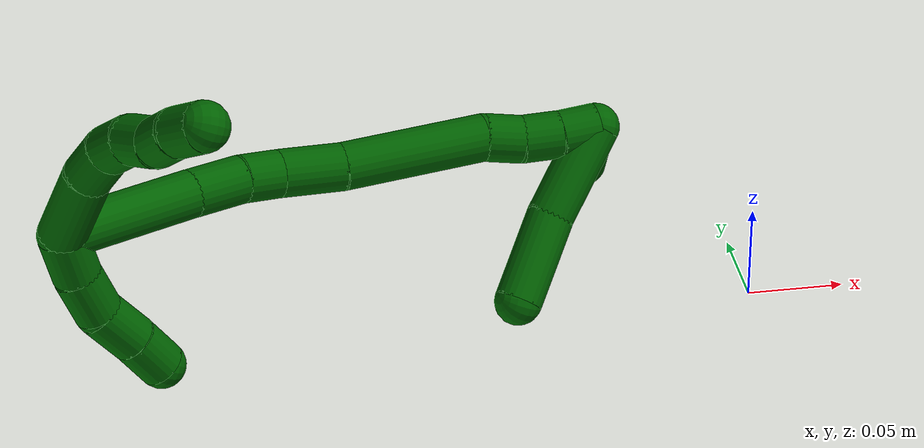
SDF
<sdf version="1.7">
 <world name="default">
  <model name="6">
   <static>0</static>
   <link name="6">
    <collision name="collision-cylinder-e_1_2_8">
     <pose>0.013442 -0.018084 0.005991 1.25086 0.614487 0.450482</pose>
     <geometry><cylinder><radius>0.0125</radius><length>0.046631</length></cylinder></geometry>
     <surface>
      <friction><ode><mu>1.16</mu><mu2>1.16</mu2><slip1>0</slip1><slip2>0</slip2></ode></friction>
      <contact><ode><kp>1e+06</kp><kd>1</kd><max_vel>0</max_vel><min_depth>0.001</min_depth></ode></contact>
     </surface>
    </collision>
    <visual name="visual-cylinder-e_1_2_8">
     <pose>0.013442 -0.018084 0.005991 1.25086 0.614487 0.450482</pose>
     <geometry><cylinder><radius>0.0125</radius><length>0.046631</length></cylinder></geometry>
     <material><ambient>0 0.392157 0.003922 1</ambient></material>
    </visual>
    <collision name="collision-cylinder-e_2_8_9">
     <pose>0.032763 -0.045689 0.013143 1.4495 0.549811 0.489495</pose>
     <geometry><cylinder><radius>0.0125</radius><length>0.022499</length></cylinder></geometry>
     <surface>
      <friction><ode><mu>1.16</mu><mu2>1.16</mu2><slip1>0</slip1><slip2>0</slip2></ode></friction>
      <contact><ode><kp>1e+06</kp><kd>1</kd><max_vel>0</max_vel><min_depth>0.001</min_depth></ode></contact>
     </surface>
    </collision>
    <visual name="visual-cylinder-e_2_8_9">
     <pose>0.032763 -0.045689 0.013143 1.4495 0.549811 0.489495</pose>
     <geometry><cylinder><radius>0.0125</radius><length>0.022499</length></cylinder></geometry>
     <material><ambient>0 0.392157 0.003922 1</ambient></material>
    </visual>
    <collision name="collision-cylinder-e_3_9_10">
     <pose>0.041139 -0.064939 0.014482 1.55253 0.251272 0.24677</pose>
     <geometry><cylinder><radius>0.0125</radius><length>0.020094</length></cylinder></geometry>
     <surface>
      <friction><ode><mu>1.16</mu><mu2>1.16</mu2><slip1>0</slip1><slip2>0</slip2></ode></friction>
      <contact><ode><kp>1e+06</kp><kd>1</kd><max_vel>0</max_vel><min_depth>0.001</min_depth></ode></contact>
     </surface>
    </collision>
    <visual name="visual-cylinder-e_3_9_10">
     <pose>0.041139 -0.064939 0.014482 1.55253 0.251272 0.24677</pose>
     <geometry><cylinder><radius>0.0125</radius><length>0.020094</length></cylinder></geometry>
     <material><ambient>0 0.392157 0.003922 1</ambient></material>
    </visual>
    <collision name="collision-cylinder-e_4_10_11">
     <pose>0.042979 -0.084849 0.013593 1.67519 -0.064232 -0.071307</pose>
     <geometry><cylinder><radius>0.0125</radius><length>0.020514</length></cylinder></geometry>
     <surface>
      <friction><ode><mu>1.16</mu><mu2>1.16</mu2><slip1>0</slip1><slip2>0</slip2></ode></friction>
      <contact><ode><kp>1e+06</kp><kd>1</kd><max_vel>0</max_vel><min_depth>0.001</min_depth></ode></contact>
     </surface>
    </collision>
    <visual name="visual-cylinder-e_4_10_11">
     <pose>0.042979 -0.084849 0.013593 1.67519 -0.064232 -0.071307</pose>
     <geometry><cylinder><radius>0.0125</radius><length>0.020514</length></cylinder></geometry>
     <material><ambient>0 0.392157 0.003922 1</ambient></material>
    </visual>
    <collision name="collision-cylinder-e_5_11_12">
     <pose>0.044453 -0.104847 0.013475 1.47446 0.212951 0.193493</pose>
     <geometry><cylinder><radius>0.0125</radius><length>0.020182</length></cylinder></geometry>
     <surface>
      <friction><ode><mu>1.16</mu><mu2>1.16</mu2><slip1>0</slip1><slip2>0</slip2></ode></friction>
      <contact><ode><kp>1e+06</kp><kd>1</kd><max_vel>0</max_vel><min_depth>0.001</min_depth></ode></contact>
     </surface>
    </collision>
    <visual name="visual-cylinder-e_5_11_12">
     <pose>0.044453 -0.104847 0.013475 1.47446 0.212951 0.193493</pose>
     <geometry><cylinder><radius>0.0125</radius><length>0.020182</length></cylinder></geometry>
     <material><ambient>0 0.392157 0.003922 1</ambient></material>
    </visual>
    <collision name="collision-cylinder-e_6_12_6">
     <pose>0.048049 -0.124551 0.013465 1.66744 0.146286 0.161092</pose>
     <geometry><cylinder><radius>0.0125</radius><length>0.02008</length></cylinder></geometry>
     <surface>
      <friction><ode><mu>1.16</mu><mu2>1.16</mu2><slip1>0</slip1><slip2>0</slip2></ode></friction>
      <contact><ode><kp>1e+06</kp><kd>1</kd><max_vel>0</max_vel><min_depth>0.001</min_depth></ode></contact>
     </surface>
    </collision>
    <visual name="visual-cylinder-e_6_12_6">
     <pose>0.048049 -0.124551 0.013465 1.66744 0.146286 0.161092</pose>
     <geometry><cylinder><radius>0.0125</radius><length>0.02008</length></cylinder></geometry>
     <material><ambient>0 0.392157 0.003922 1</ambient></material>
    </visual>
    <collision name="collision-cylinder-e_1_2_13">
     <pose>-0.008359 0.004247 -0.008566 -2.6813 -0.718433 2.02591</pose>
     <geometry><cylinder><radius>0.0125</radius><length>0.025399</length></cylinder></geometry>
     <surface>
      <friction><ode><mu>1.16</mu><mu2>1.16</mu2><slip1>0</slip1><slip2>0</slip2></ode></friction>
      <contact><ode><kp>1e+06</kp><kd>1</kd><max_vel>0</max_vel><min_depth>0.001</min_depth></ode></contact>
     </surface>
    </collision>
    <visual name="visual-cylinder-e_1_2_13">
     <pose>-0.008359 0.004247 -0.008566 -2.6813 -0.718433 2.02591</pose>
     <geometry><cylinder><radius>0.0125</radius><length>0.025399</length></cylinder></geometry>
     <material><ambient>0 0.392157 0.003922 1</ambient></material>
    </visual>
    <collision name="collision-cylinder-e_2_13_14">
     <pose>-0.02426 0.01151 -0.026743 -2.8375 -0.642687 2.2788</pose>
     <geometry><cylinder><radius>0.0125</radius><length>0.025168</length></cylinder></geometry>
     <surface>
      <friction><ode><mu>1.16</mu><mu2>1.16</mu2><slip1>0</slip1><slip2>0</slip2></ode></friction>
      <contact><ode><kp>1e+06</kp><kd>1</kd><max_vel>0</max_vel><min_depth>0.001</min_depth></ode></contact>
     </surface>
    </collision>
    <visual name="visual-cylinder-e_2_13_14">
     <pose>-0.02426 0.01151 -0.026743 -2.8375 -0.642687 2.2788</pose>
     <geometry><cylinder><radius>0.0125</radius><length>0.025168</length></cylinder></geometry>
     <material><ambient>0 0.392157 0.003922 1</ambient></material>
    </visual>
    <collision name="collision-cylinder-e_3_14_15">
     <pose>-0.036553 0.015976 -0.048379 -3.02166 -0.37376 2.5267</pose>
     <geometry><cylinder><radius>0.0125</radius><length>0.026021</length></cylinder></geometry>
     <surface>
      <friction><ode><mu>1.16</mu><mu2>1.16</mu2><slip1>0</slip1><slip2>0</slip2></ode></friction>
      <contact><ode><kp>1e+06</kp><kd>1</kd><max_vel>0</max_vel><min_depth>0.001</min_depth></ode></contact>
     </surface>
    </collision>
    <visual name="visual-cylinder-e_3_14_15">
     <pose>-0.036553 0.015976 -0.048379 -3.02166 -0.37376 2.5267</pose>
     <geometry><cylinder><radius>0.0125</radius><length>0.026021</length></cylinder></geometry>
     <material><ambient>0 0.392157 0.003922 1</ambient></material>
    </visual>
    <collision name="collision-cylinder-e_4_15_5">
     <pose>-0.045998 0.019382 -0.070947 -2.95803 -0.412732 2.31317</pose>
     <geometry><cylinder><radius>0.0125</radius><length>0.023412</length></cylinder></geometry>
     <surface>
      <friction><ode><mu>1.16</mu><mu2>1.16</mu2><slip1>0</slip1><slip2>0</slip2></ode></friction>
      <contact><ode><kp>1e+06</kp><kd>1</kd><max_vel>0</max_vel><min_depth>0.001</min_depth></ode></contact>
     </surface>
    </collision>
    <visual name="visual-cylinder-e_4_15_5">
     <pose>-0.045998 0.019382 -0.070947 -2.95803 -0.412732 2.31317</pose>
     <geometry><cylinder><radius>0.0125</radius><length>0.023412</length></cylinder></geometry>
     <material><ambient>0 0.392157 0.003922 1</ambient></material>
    </visual>
    <collision name="collision-cylinder-e_1_2_16">
     <pose>0.017036 0.000348 -0.034162 -3.13141 0.462583 -3.09837</pose>
     <geometry><cylinder><radius>0.0125</radius><length>0.076351</length></cylinder></geometry>
     <surface>
      <friction><ode><mu>1.16</mu><mu2>1.16</mu2><slip1>0</slip1><slip2>0</slip2></ode></friction>
      <contact><ode><kp>1e+06</kp><kd>1</kd><max_vel>0</max_vel><min_depth>0.001</min_depth></ode></contact>
     </surface>
    </collision>
    <visual name="visual-cylinder-e_1_2_16">
     <pose>0.017036 0.000348 -0.034162 -3.13141 0.462583 -3.09837</pose>
     <geometry><cylinder><radius>0.0125</radius><length>0.076351</length></cylinder></geometry>
     <material><ambient>0 0.392157 0.003922 1</ambient></material>
    </visual>
    <collision name="collision-cylinder-e_2_16_17">
     <pose>0.040507 -0.000205 -0.081608 3.07394 0.450124 2.8481</pose>
     <geometry><cylinder><radius>0.0125</radius><length>0.029577</length></cylinder></geometry>
     <surface>
      <friction><ode><mu>1.16</mu><mu2>1.16</mu2><slip1>0</slip1><slip2>0</slip2></ode></friction>
      <contact><ode><kp>1e+06</kp><kd>1</kd><max_vel>0</max_vel><min_depth>0.001</min_depth></ode></contact>
     </surface>
    </collision>
    <visual name="visual-cylinder-e_2_16_17">
     <pose>0.040507 -0.000205 -0.081608 3.07394 0.450124 2.8481</pose>
     <geometry><cylinder><radius>0.0125</radius><length>0.029577</length></cylinder></geometry>
     <material><ambient>0 0.392157 0.003922 1</ambient></material>
    </visual>
    <collision name="collision-cylinder-e_3_17_18">
     <pose>0.050488 -0.001697 -0.105333 3.08496 0.32705 2.80159</pose>
     <geometry><cylinder><radius>0.0125</radius><length>0.022084</length></cylinder></geometry>
     <surface>
      <friction><ode><mu>1.16</mu><mu2>1.16</mu2><slip1>0</slip1><slip2>0</slip2></ode></friction>
      <contact><ode><kp>1e+06</kp><kd>1</kd><max_vel>0</max_vel><min_depth>0.001</min_depth></ode></contact>
     </surface>
    </collision>
    <visual name="visual-cylinder-e_3_17_18">
     <pose>0.050488 -0.001697 -0.105333 3.08496 0.32705 2.80159</pose>
     <geometry><cylinder><radius>0.0125</radius><length>0.022084</length></cylinder></geometry>
     <material><ambient>0 0.392157 0.003922 1</ambient></material>
    </visual>
    <collision name="collision-cylinder-e_4_18_19">
     <pose>0.058995 -0.007716 -0.131154 2.80235 0.295172 1.42975</pose>
     <geometry><cylinder><radius>0.0125</radius><length>0.034097</length></cylinder></geometry>
     <surface>
      <friction><ode><mu>1.16</mu><mu2>1.16</mu2><slip1>0</slip1><slip2>0</slip2></ode></friction>
      <contact><ode><kp>1e+06</kp><kd>1</kd><max_vel>0</max_vel><min_depth>0.001</min_depth></ode></contact>
     </surface>
    </collision>
    <visual name="visual-cylinder-e_4_18_19">
     <pose>0.058995 -0.007716 -0.131154 2.80235 0.295172 1.42975</pose>
     <geometry><cylinder><radius>0.0125</radius><length>0.034097</length></cylinder></geometry>
     <material><ambient>0 0.392157 0.003922 1</ambient></material>
    </visual>
    <collision name="collision-cylinder-e_5_19_20">
     <pose>0.078514 -0.025055 -0.180172 2.80126 0.387406 1.70287</pose>
     <geometry><cylinder><radius>0.0125</radius><length>0.077077</length></cylinder></geometry>
     <surface>
      <friction><ode><mu>1.16</mu><mu2>1.16</mu2><slip1>0</slip1><slip2>0</slip2></ode></friction>
      <contact><ode><kp>1e+06</kp><kd>1</kd><max_vel>0</max_vel><min_depth>0.001</min_depth></ode></contact>
     </surface>
    </collision>
    <visual name="visual-cylinder-e_5_19_20">
     <pose>0.078514 -0.025055 -0.180172 2.80126 0.387406 1.70287</pose>
     <geometry><cylinder><radius>0.0125</radius><length>0.077077</length></cylinder></geometry>
     <material><ambient>0 0.392157 0.003922 1</ambient></material>
    </visual>
    <collision name="collision-cylinder-e_6_20_21">
     <pose>0.094479 -0.040709 -0.223184 2.76169 0.138376 0.691856</pose>
     <geometry><cylinder><radius>0.0125</radius><length>0.020386</length></cylinder></geometry>
     <surface>
      <friction><ode><mu>1.16</mu><mu2>1.16</mu2><slip1>0</slip1><slip2>0</slip2></ode></friction>
      <contact><ode><kp>1e+06</kp><kd>1</kd><max_vel>0</max_vel><min_depth>0.001</min_depth></ode></contact>
     </surface>
    </collision>
    <visual name="visual-cylinder-e_6_20_21">
     <pose>0.094479 -0.040709 -0.223184 2.76169 0.138376 0.691856</pose>
     <geometry><cylinder><radius>0.0125</radius><length>0.020386</length></cylinder></geometry>
     <material><ambient>0 0.392157 0.003922 1</ambient></material>
    </visual>
    <collision name="collision-cylinder-e_7_21_22">
     <pose>0.098999 -0.048506 -0.241373 2.71063 0.310627 1.24191</pose>
     <geometry><cylinder><radius>0.0125</radius><length>0.020377</length></cylinder></geometry>
     <surface>
      <friction><ode><mu>1.16</mu><mu2>1.16</mu2><slip1>0</slip1><slip2>0</slip2></ode></friction>
      <contact><ode><kp>1e+06</kp><kd>1</kd><max_vel>0</max_vel><min_depth>0.001</min_depth></ode></contact>
     </surface>
    </collision>
    <visual name="visual-cylinder-e_7_21_22">
     <pose>0.098999 -0.048506 -0.241373 2.71063 0.310627 1.24191</pose>
     <geometry><cylinder><radius>0.0125</radius><length>0.020377</length></cylinder></geometry>
     <material><ambient>0 0.392157 0.003922 1</ambient></material>
    </visual>
    <collision name="collision-cylinder-e_8_22_1">
     <pose>0.105931 -0.056116 -0.258747 2.74764 0.390702 1.56231</pose>
     <geometry><cylinder><radius>0.0125</radius><length>0.020051</length></cylinder></geometry>
     <surface>
      <friction><ode><mu>1.16</mu><mu2>1.16</mu2><slip1>0</slip1><slip2>0</slip2></ode></friction>
      <contact><ode><kp>1e+06</kp><kd>1</kd><max_vel>0</max_vel><min_depth>0.001</min_depth></ode></contact>
     </surface>
    </collision>
    <visual name="visual-cylinder-e_8_22_1">
     <pose>0.105931 -0.056116 -0.258747 2.74764 0.390702 1.56231</pose>
     <geometry><cylinder><radius>0.0125</radius><length>0.020051</length></cylinder></geometry>
     <material><ambient>0 0.392157 0.003922 1</ambient></material>
    </visual>
    <collision name="collision-cylinder-e_1_1_23">
     <pose>0.10905 -0.038202 -0.281907 -2.16792 -0.026938 0.050883</pose>
     <geometry><cylinder><radius>0.0125</radius><length>0.051951</length></cylinder></geometry>
     <surface>
      <friction><ode><mu>1.16</mu><mu2>1.16</mu2><slip1>0</slip1><slip2>0</slip2></ode></friction>
      <contact><ode><kp>1e+06</kp><kd>1</kd><max_vel>0</max_vel><min_depth>0.001</min_depth></ode></contact>
     </surface>
    </collision>
    <visual name="visual-cylinder-e_1_1_23">
     <pose>0.10905 -0.038202 -0.281907 -2.16792 -0.026938 0.050883</pose>
     <geometry><cylinder><radius>0.0125</radius><length>0.051951</length></cylinder></geometry>
     <material><ambient>0 0.392157 0.003922 1</ambient></material>
    </visual>
    <collision name="collision-cylinder-e_2_23_4">
     <pose>0.105613 0.002533 -0.310601 -2.2025 -0.114172 0.224316</pose>
     <geometry><cylinder><radius>0.0125</radius><length>0.048049</length></cylinder></geometry>
     <surface>
      <friction><ode><mu>1.16</mu><mu2>1.16</mu2><slip1>0</slip1><slip2>0</slip2></ode></friction>
      <contact><ode><kp>1e+06</kp><kd>1</kd><max_vel>0</max_vel><min_depth>0.001</min_depth></ode></contact>
     </surface>
    </collision>
    <visual name="visual-cylinder-e_2_23_4">
     <pose>0.105613 0.002533 -0.310601 -2.2025 -0.114172 0.224316</pose>
     <geometry><cylinder><radius>0.0125</radius><length>0.048049</length></cylinder></geometry>
     <material><ambient>0 0.392157 0.003922 1</ambient></material>
    </visual>
    <collision name="collision-cylinder-e_1_1_24">
     <pose>0.085023 -0.05377 -0.261833 -0.823197 -1.25599 0.613855</pose>
     <geometry><cylinder><radius>0.0125</radius><length>0.05201</length></cylinder></geometry>
     <surface>
      <friction><ode><mu>1.16</mu><mu2>1.16</mu2><slip1>0</slip1><slip2>0</slip2></ode></friction>
      <contact><ode><kp>1e+06</kp><kd>1</kd><max_vel>0</max_vel><min_depth>0.001</min_depth></ode></contact>
     </surface>
    </collision>
    <visual name="visual-cylinder-e_1_1_24">
     <pose>0.085023 -0.05377 -0.261833 -0.823197 -1.25599 0.613855</pose>
     <geometry><cylinder><radius>0.0125</radius><length>0.05201</length></cylinder></geometry>
     <material><ambient>0 0.392157 0.003922 1</ambient></material>
    </visual>
    <collision name="collision-cylinder-e_2_24_3">
     <pose>0.036816 -0.046328 -0.251655 -0.315924 -1.3631 0.257015</pose>
     <geometry><cylinder><radius>0.0125</radius><length>0.04799</length></cylinder></geometry>
     <surface>
      <friction><ode><mu>1.16</mu><mu2>1.16</mu2><slip1>0</slip1><slip2>0</slip2></ode></friction>
      <contact><ode><kp>1e+06</kp><kd>1</kd><max_vel>0</max_vel><min_depth>0.001</min_depth></ode></contact>
     </surface>
    </collision>
    <visual name="visual-cylinder-e_2_24_3">
     <pose>0.036816 -0.046328 -0.251655 -0.315924 -1.3631 0.257015</pose>
     <geometry><cylinder><radius>0.0125</radius><length>0.04799</length></cylinder></geometry>
     <material><ambient>0 0.392157 0.003922 1</ambient></material>
    </visual>
    <collision name="collision-sphere-3">
     <pose>0.013337 -0.04479 -0.246952 0 -0 0</pose>
     <geometry><sphere><radius>0.0125</radius></sphere></geometry>
     <surface>
      <friction><ode><mu>1.16</mu><mu2>1.16</mu2><slip1>0</slip1><slip2>0</slip2></ode></friction>
      <contact><ode><kp>1e+06</kp><kd>1</kd><max_vel>0</max_vel><min_depth>0.001</min_depth></ode></contact>
     </surface>
    </collision>
    <visual name="visual-sphere-3">
     <pose>0.013337 -0.04479 -0.246952 0 -0 0</pose>
     <geometry><sphere><radius>0.0125</radius></sphere></geometry>
     <material><ambient>0 0.392157 0.003922 1</ambient></material>
    </visual>
    <collision name="collision-sphere-24">
     <pose>0.060296 -0.047865 -0.256358 0 -0 0</pose>
     <geometry><sphere><radius>0.0125</radius></sphere></geometry>
     <surface>
      <friction><ode><mu>1.16</mu><mu2>1.16</mu2><slip1>0</slip1><slip2>0</slip2></ode></friction>
      <contact><ode><kp>1e+06</kp><kd>1</kd><max_vel>0</max_vel><min_depth>0.001</min_depth></ode></contact>
     </surface>
    </collision>
    <visual name="visual-sphere-24">
     <pose>0.060296 -0.047865 -0.256358 0 -0 0</pose>
     <geometry><sphere><radius>0.0125</radius></sphere></geometry>
     <material><ambient>0 0.392157 0.003922 1</ambient></material>
    </visual>
    <collision name="collision-sphere-4">
     <pose>0.102876 0.021795 -0.324696 0 -0 0</pose>
     <geometry><sphere><radius>0.0125</radius></sphere></geometry>
     <surface>
      <friction><ode><mu>1.16</mu><mu2>1.16</mu2><slip1>0</slip1><slip2>0</slip2></ode></friction>
      <contact><ode><kp>1e+06</kp><kd>1</kd><max_vel>0</max_vel><min_depth>0.001</min_depth></ode></contact>
     </surface>
    </collision>
    <visual name="visual-sphere-4">
     <pose>0.102876 0.021795 -0.324696 0 -0 0</pose>
     <geometry><sphere><radius>0.0125</radius></sphere></geometry>
     <material><ambient>0 0.392157 0.003922 1</ambient></material>
    </visual>
    <collision name="collision-sphere-23">
     <pose>0.10835 -0.016729 -0.296507 0 -0 0</pose>
     <geometry><sphere><radius>0.0125</radius></sphere></geometry>
     <surface>
      <friction><ode><mu>1.16</mu><mu2>1.16</mu2><slip1>0</slip1><slip2>0</slip2></ode></friction>
      <contact><ode><kp>1e+06</kp><kd>1</kd><max_vel>0</max_vel><min_depth>0.001</min_depth></ode></contact>
     </surface>
    </collision>
    <visual name="visual-sphere-23">
     <pose>0.10835 -0.016729 -0.296507 0 -0 0</pose>
     <geometry><sphere><radius>0.0125</radius></sphere></geometry>
     <material><ambient>0 0.392157 0.003922 1</ambient></material>
    </visual>
    <collision name="collision-sphere-1">
     <pose>0.10975 -0.059674 -0.267307 0 -0 0</pose>
     <geometry><sphere><radius>0.0125</radius></sphere></geometry>
     <surface>
      <friction><ode><mu>1.16</mu><mu2>1.16</mu2><slip1>0</slip1><slip2>0</slip2></ode></friction>
      <contact><ode><kp>1e+06</kp><kd>1</kd><max_vel>0</max_vel><min_depth>0.001</min_depth></ode></contact>
     </surface>
    </collision>
    <visual name="visual-sphere-1">
     <pose>0.10975 -0.059674 -0.267307 0 -0 0</pose>
     <geometry><sphere><radius>0.0125</radius></sphere></geometry>
     <material><ambient>0 0.392157 0.003922 1</ambient></material>
    </visual>
    <collision name="collision-sphere-22">
     <pose>0.102113 -0.052558 -0.250187 0 -0 0</pose>
     <geometry><sphere><radius>0.0125</radius></sphere></geometry>
     <surface>
      <friction><ode><mu>1.16</mu><mu2>1.16</mu2><slip1>0</slip1><slip2>0</slip2></ode></friction>
      <contact><ode><kp>1e+06</kp><kd>1</kd><max_vel>0</max_vel><min_depth>0.001</min_depth></ode></contact>
     </surface>
    </collision>
    <visual name="visual-sphere-22">
     <pose>0.102113 -0.052558 -0.250187 0 -0 0</pose>
     <geometry><sphere><radius>0.0125</radius></sphere></geometry>
     <material><ambient>0 0.392157 0.003922 1</ambient></material>
    </visual>
    <collision name="collision-sphere-21">
     <pose>0.095885 -0.044453 -0.232559 0 -0 0</pose>
     <geometry><sphere><radius>0.0125</radius></sphere></geometry>
     <surface>
      <friction><ode><mu>1.16</mu><mu2>1.16</mu2><slip1>0</slip1><slip2>0</slip2></ode></friction>
      <contact><ode><kp>1e+06</kp><kd>1</kd><max_vel>0</max_vel><min_depth>0.001</min_depth></ode></contact>
     </surface>
    </collision>
    <visual name="visual-sphere-21">
     <pose>0.095885 -0.044453 -0.232559 0 -0 0</pose>
     <geometry><sphere><radius>0.0125</radius></sphere></geometry>
     <material><ambient>0 0.392157 0.003922 1</ambient></material>
    </visual>
    <collision name="collision-sphere-12">
     <pose>0.046586 -0.114664 0.014424 0 -0 0</pose>
     <geometry><sphere><radius>0.0125</radius></sphere></geometry>
     <surface>
      <friction><ode><mu>1.16</mu><mu2>1.16</mu2><slip1>0</slip1><slip2>0</slip2></ode></friction>
      <contact><ode><kp>1e+06</kp><kd>1</kd><max_vel>0</max_vel><min_depth>0.001</min_depth></ode></contact>
     </surface>
    </collision>
    <visual name="visual-sphere-12">
     <pose>0.046586 -0.114664 0.014424 0 -0 0</pose>
     <geometry><sphere><radius>0.0125</radius></sphere></geometry>
     <material><ambient>0 0.392157 0.003922 1</ambient></material>
    </visual>
    <collision name="collision-sphere-11">
     <pose>0.04232 -0.09503 0.012526 0 -0 0</pose>
     <geometry><sphere><radius>0.0125</radius></sphere></geometry>
     <surface>
      <friction><ode><mu>1.16</mu><mu2>1.16</mu2><slip1>0</slip1><slip2>0</slip2></ode></friction>
      <contact><ode><kp>1e+06</kp><kd>1</kd><max_vel>0</max_vel><min_depth>0.001</min_depth></ode></contact>
     </surface>
    </collision>
    <visual name="visual-sphere-11">
     <pose>0.04232 -0.09503 0.012526 0 -0 0</pose>
     <geometry><sphere><radius>0.0125</radius></sphere></geometry>
     <material><ambient>0 0.392157 0.003922 1</ambient></material>
    </visual>
    <collision name="collision-sphere-10">
     <pose>0.043637 -0.074669 0.014659 0 -0 0</pose>
     <geometry><sphere><radius>0.0125</radius></sphere></geometry>
     <surface>
      <friction><ode><mu>1.16</mu><mu2>1.16</mu2><slip1>0</slip1><slip2>0</slip2></ode></friction>
      <contact><ode><kp>1e+06</kp><kd>1</kd><max_vel>0</max_vel><min_depth>0.001</min_depth></ode></contact>
     </surface>
    </collision>
    <visual name="visual-sphere-10">
     <pose>0.043637 -0.074669 0.014659 0 -0 0</pose>
     <geometry><sphere><radius>0.0125</radius></sphere></geometry>
     <material><ambient>0 0.392157 0.003922 1</ambient></material>
    </visual>
    <collision name="collision-sphere-9">
     <pose>0.038641 -0.05521 0.014304 0 -0 0</pose>
     <geometry><sphere><radius>0.0125</radius></sphere></geometry>
     <surface>
      <friction><ode><mu>1.16</mu><mu2>1.16</mu2><slip1>0</slip1><slip2>0</slip2></ode></friction>
      <contact><ode><kp>1e+06</kp><kd>1</kd><max_vel>0</max_vel><min_depth>0.001</min_depth></ode></contact>
     </surface>
    </collision>
    <visual name="visual-sphere-9">
     <pose>0.038641 -0.05521 0.014304 0 -0 0</pose>
     <geometry><sphere><radius>0.0125</radius></sphere></geometry>
     <material><ambient>0 0.392157 0.003922 1</ambient></material>
    </visual>
    <collision name="collision-sphere-2">
     <geometry><sphere><radius>0.0125</radius></sphere></geometry>
     <surface>
      <friction><ode><mu>1.16</mu><mu2>1.16</mu2><slip1>0</slip1><slip2>0</slip2></ode></friction>
      <contact><ode><kp>1e+06</kp><kd>1</kd><max_vel>0</max_vel><min_depth>0.001</min_depth></ode></contact>
     </surface>
    </collision>
    <visual name="visual-sphere-2">
     <geometry><sphere><radius>0.0125</radius></sphere></geometry>
     <material><ambient>0 0.392157 0.003922 1</ambient></material>
    </visual>
    <collision name="collision-sphere-19">
     <pose>0.063954 -0.013144 -0.146536 0 -0 0</pose>
     <geometry><sphere><radius>0.0125</radius></sphere></geometry>
     <surface>
      <friction><ode><mu>1.16</mu><mu2>1.16</mu2><slip1>0</slip1><slip2>0</slip2></ode></friction>
      <contact><ode><kp>1e+06</kp><kd>1</kd><max_vel>0</max_vel><min_depth>0.001</min_depth></ode></contact>
     </surface>
    </collision>
    <visual name="visual-sphere-19">
     <pose>0.063954 -0.013144 -0.146536 0 -0 0</pose>
     <geometry><sphere><radius>0.0125</radius></sphere></geometry>
     <material><ambient>0 0.392157 0.003922 1</ambient></material>
    </visual>
    <collision name="collision-sphere-8">
     <pose>0.026885 -0.036168 0.011983 0 -0 0</pose>
     <geometry><sphere><radius>0.0125</radius></sphere></geometry>
     <surface>
      <friction><ode><mu>1.16</mu><mu2>1.16</mu2><slip1>0</slip1><slip2>0</slip2></ode></friction>
      <contact><ode><kp>1e+06</kp><kd>1</kd><max_vel>0</max_vel><min_depth>0.001</min_depth></ode></contact>
     </surface>
    </collision>
    <visual name="visual-sphere-8">
     <pose>0.026885 -0.036168 0.011983 0 -0 0</pose>
     <geometry><sphere><radius>0.0125</radius></sphere></geometry>
     <material><ambient>0 0.392157 0.003922 1</ambient></material>
    </visual>
    <collision name="collision-sphere-6">
     <pose>0.049513 -0.134437 0.012507 0 -0 0</pose>
     <geometry><sphere><radius>0.0125</radius></sphere></geometry>
     <surface>
      <friction><ode><mu>1.16</mu><mu2>1.16</mu2><slip1>0</slip1><slip2>0</slip2></ode></friction>
      <contact><ode><kp>1e+06</kp><kd>1</kd><max_vel>0</max_vel><min_depth>0.001</min_depth></ode></contact>
     </surface>
    </collision>
    <visual name="visual-sphere-6">
     <pose>0.049513 -0.134437 0.012507 0 -0 0</pose>
     <geometry><sphere><radius>0.0125</radius></sphere></geometry>
     <material><ambient>0 0.392157 0.003922 1</ambient></material>
    </visual>
    <collision name="collision-sphere-13">
     <pose>-0.016718 0.008494 -0.017131 0 -0 0</pose>
     <geometry><sphere><radius>0.0125</radius></sphere></geometry>
     <surface>
      <friction><ode><mu>1.16</mu><mu2>1.16</mu2><slip1>0</slip1><slip2>0</slip2></ode></friction>
      <contact><ode><kp>1e+06</kp><kd>1</kd><max_vel>0</max_vel><min_depth>0.001</min_depth></ode></contact>
     </surface>
    </collision>
    <visual name="visual-sphere-13">
     <pose>-0.016718 0.008494 -0.017131 0 -0 0</pose>
     <geometry><sphere><radius>0.0125</radius></sphere></geometry>
     <material><ambient>0 0.392157 0.003922 1</ambient></material>
    </visual>
    <collision name="collision-sphere-14">
     <pose>-0.031802 0.014526 -0.036354 0 -0 0</pose>
     <geometry><sphere><radius>0.0125</radius></sphere></geometry>
     <surface>
      <friction><ode><mu>1.16</mu><mu2>1.16</mu2><slip1>0</slip1><slip2>0</slip2></ode></friction>
      <contact><ode><kp>1e+06</kp><kd>1</kd><max_vel>0</max_vel><min_depth>0.001</min_depth></ode></contact>
     </surface>
    </collision>
    <visual name="visual-sphere-14">
     <pose>-0.031802 0.014526 -0.036354 0 -0 0</pose>
     <geometry><sphere><radius>0.0125</radius></sphere></geometry>
     <material><ambient>0 0.392157 0.003922 1</ambient></material>
    </visual>
    <collision name="collision-sphere-15">
     <pose>-0.041303 0.017425 -0.060404 0 -0 0</pose>
     <geometry><sphere><radius>0.0125</radius></sphere></geometry>
     <surface>
      <friction><ode><mu>1.16</mu><mu2>1.16</mu2><slip1>0</slip1><slip2>0</slip2></ode></friction>
      <contact><ode><kp>1e+06</kp><kd>1</kd><max_vel>0</max_vel><min_depth>0.001</min_depth></ode></contact>
     </surface>
    </collision>
    <visual name="visual-sphere-15">
     <pose>-0.041303 0.017425 -0.060404 0 -0 0</pose>
     <geometry><sphere><radius>0.0125</radius></sphere></geometry>
     <material><ambient>0 0.392157 0.003922 1</ambient></material>
    </visual>
    <collision name="collision-sphere-5">
     <pose>-0.050694 0.021339 -0.08149 0 -0 0</pose>
     <geometry><sphere><radius>0.0125</radius></sphere></geometry>
     <surface>
      <friction><ode><mu>1.16</mu><mu2>1.16</mu2><slip1>0</slip1><slip2>0</slip2></ode></friction>
      <contact><ode><kp>1e+06</kp><kd>1</kd><max_vel>0</max_vel><min_depth>0.001</min_depth></ode></contact>
     </surface>
    </collision>
    <visual name="visual-sphere-5">
     <pose>-0.050694 0.021339 -0.08149 0 -0 0</pose>
     <geometry><sphere><radius>0.0125</radius></sphere></geometry>
     <material><ambient>0 0.392157 0.003922 1</ambient></material>
    </visual>
    <collision name="collision-sphere-16">
     <pose>0.034073 0.000696 -0.068323 0 -0 0</pose>
     <geometry><sphere><radius>0.0125</radius></sphere></geometry>
     <surface>
      <friction><ode><mu>1.16</mu><mu2>1.16</mu2><slip1>0</slip1><slip2>0</slip2></ode></friction>
      <contact><ode><kp>1e+06</kp><kd>1</kd><max_vel>0</max_vel><min_depth>0.001</min_depth></ode></contact>
     </surface>
    </collision>
    <visual name="visual-sphere-16">
     <pose>0.034073 0.000696 -0.068323 0 -0 0</pose>
     <geometry><sphere><radius>0.0125</radius></sphere></geometry>
     <material><ambient>0 0.392157 0.003922 1</ambient></material>
    </visual>
    <collision name="collision-sphere-17">
     <pose>0.046941 -0.001105 -0.094893 0 -0 0</pose>
     <geometry><sphere><radius>0.0125</radius></sphere></geometry>
     <surface>
      <friction><ode><mu>1.16</mu><mu2>1.16</mu2><slip1>0</slip1><slip2>0</slip2></ode></friction>
      <contact><ode><kp>1e+06</kp><kd>1</kd><max_vel>0</max_vel><min_depth>0.001</min_depth></ode></contact>
     </surface>
    </collision>
    <visual name="visual-sphere-17">
     <pose>0.046941 -0.001105 -0.094893 0 -0 0</pose>
     <geometry><sphere><radius>0.0125</radius></sphere></geometry>
     <material><ambient>0 0.392157 0.003922 1</ambient></material>
    </visual>
    <collision name="collision-sphere-18">
     <pose>0.054035 -0.002288 -0.115773 0 -0 0</pose>
     <geometry><sphere><radius>0.0125</radius></sphere></geometry>
     <surface>
      <friction><ode><mu>1.16</mu><mu2>1.16</mu2><slip1>0</slip1><slip2>0</slip2></ode></friction>
      <contact><ode><kp>1e+06</kp><kd>1</kd><max_vel>0</max_vel><min_depth>0.001</min_depth></ode></contact>
     </surface>
    </collision>
    <visual name="visual-sphere-18">
     <pose>0.054035 -0.002288 -0.115773 0 -0 0</pose>
     <geometry><sphere><radius>0.0125</radius></sphere></geometry>
     <material><ambient>0 0.392157 0.003922 1</ambient></material>
    </visual>
    <collision name="collision-sphere-20">
     <pose>0.093073 -0.036966 -0.213808 0 -0 0</pose>
     <geometry><sphere><radius>0.0125</radius></sphere></geometry>
     <surface>
      <friction><ode><mu>1.16</mu><mu2>1.16</mu2><slip1>0</slip1><slip2>0</slip2></ode></friction>
      <contact><ode><kp>1e+06</kp><kd>1</kd><max_vel>0</max_vel><min_depth>0.001</min_depth></ode></contact>
     </surface>
    </collision>
    <visual name="visual-sphere-20">
     <pose>0.093073 -0.036966 -0.213808 0 -0 0</pose>
     <geometry><sphere><radius>0.0125</radius></sphere></geometry>
     <material><ambient>0 0.392157 0.003922 1</ambient></material>
    </visual>
    <inertial>
     <pose>0.049008 -0.027072 -0.130335 0 -0 0</pose>
     <mass>0.75</mass>
     <inertia><ixx>6e-05</ixx><ixy>0</ixy><ixz>0</ixz><iyy>0.000134</iyy><iyz>0</iyz><izz>-4e-05</izz></inertia>
    </inertial>
   </link>
   <pose>-0.357257 -0.040524 0.098043 -0.730192 -0.890717 1.14586</pose>
  </model>
 </world>
</sdf>
